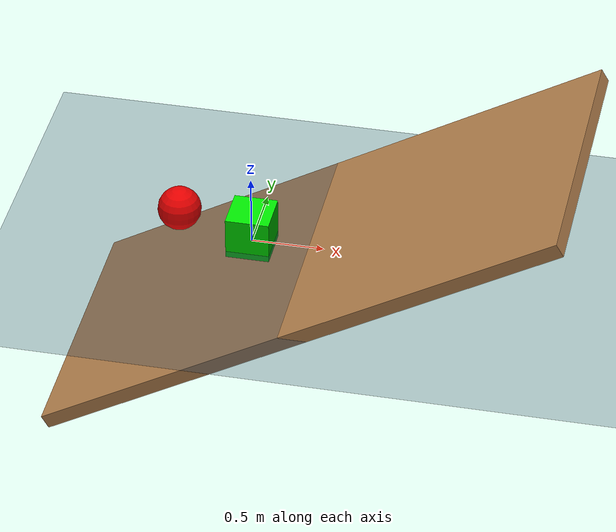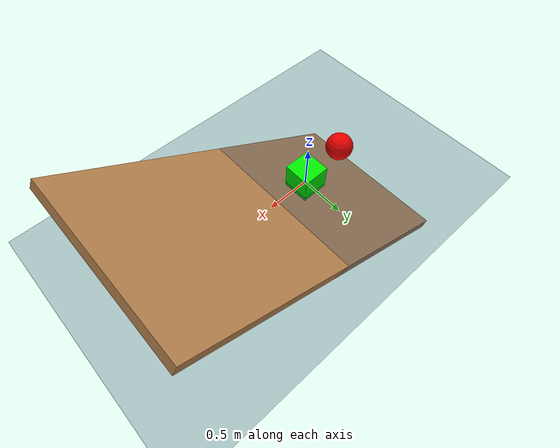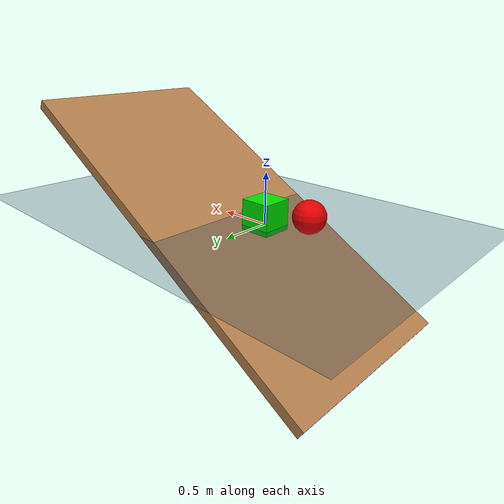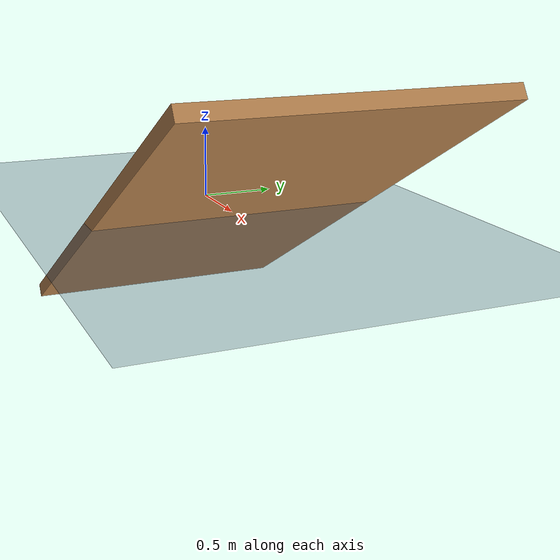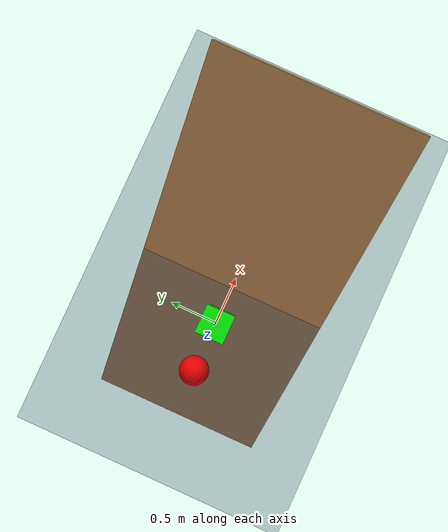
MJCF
<mujoco>
    <option gravity="0 0 -9.81" timestep="0.002" integrator="RK4">
        <flag contact="enable" />
    </option>
    <asset>
        <texture name="grid" type="2d" builtin="checker" width="512" height="512" rgb1=".1 .2 .3" rgb2=".2 .3 .4"/>
        <material name="grid" texture="grid" texrepeat="30 30" reflectance=".2"/>
        <texture name="wood" type="2d" file="wood.png" />
        <material name="wood" texture="wood"/>
    </asset>
    <worldbody>
        <light diffuse=".8 .8 .8" pos="0 0 5" dir="0 0 -1"/>
        <!-- static things -->
        <geom name="ground" pos="0 0 0" type="plane" size="5 5 .01" material="grid" friction="0.2 0.2 0.2"/>
        <geom name="ramp" pos="0.5 0 0.0" type="box" size="2.0 1.0 0.05" euler="0 -30 0" material="wood" friction="0.2 0.2 0.2"/>
        <!-- dynamic things -->
        <body name="object" pos="0.0 0 0.1">
            <joint type="free"/>
            <inertial mass="1.0" pos="0 0 0" diaginertia="0.001 0.001 0.001"/>
            <geom name="object" type="box" size=".15 .15 .15" rgba="0 .9 0 1" friction="0.2 0.2 0.2"/>
        </body>
        <body name="tool" pos="-0.5 0 0.2">
            <joint type="slide" axis="1 0 0" name="tool_x" damping="2"/>
            <joint type="slide" axis="0 1 0" name="tool_y" damping="2"/>
            <joint type="slide" axis="0 0 1" name="tool_z" damping="2"/>
            <inertial mass="0.5" pos="0 0 0" diaginertia="0.001 0.001 0.001"/>
            <geom name="tool" type="sphere" size=".15 .15 .15" rgba="0.9 0 0 1" friction="0.2 0.2 0.2"/>
        </body>
    </worldbody>
    <actuator>
        <position joint="tool_x" name="act_tool_x" kp="20" ctrllimited="true" ctrlrange="-5 5"/>
        <position joint="tool_y" name="act_tool_y" kp="20" ctrllimited="true" ctrlrange="-5 5"/>
        <position joint="tool_z" name="act_tool_z" kp="20" ctrllimited="true" ctrlrange="-5 5"/>
    </actuator>
</mujoco>
